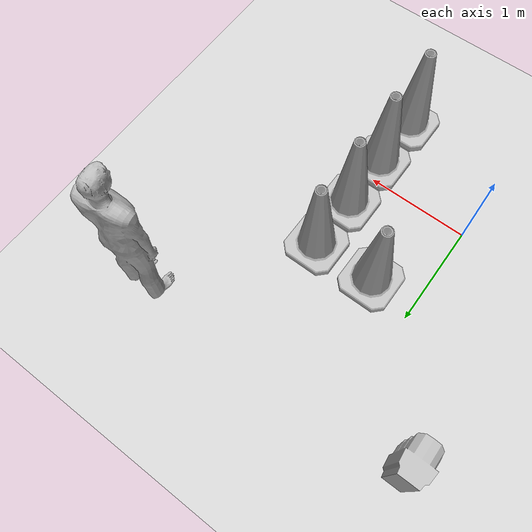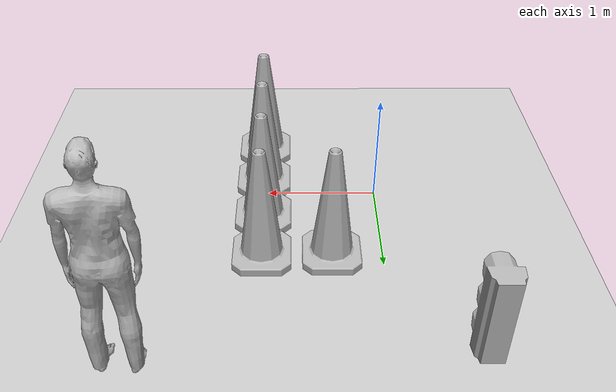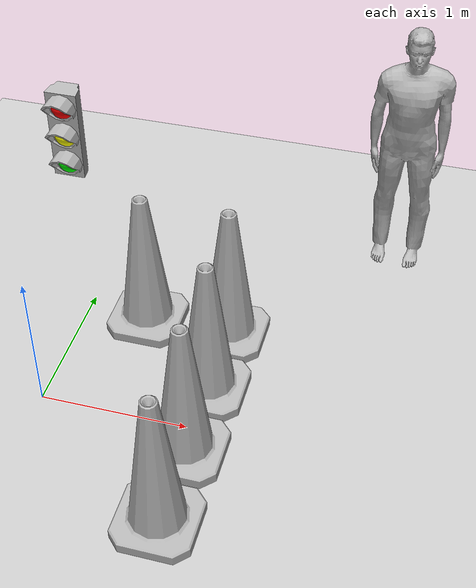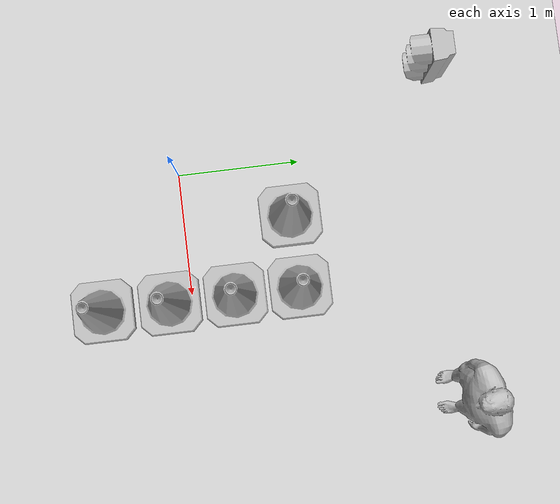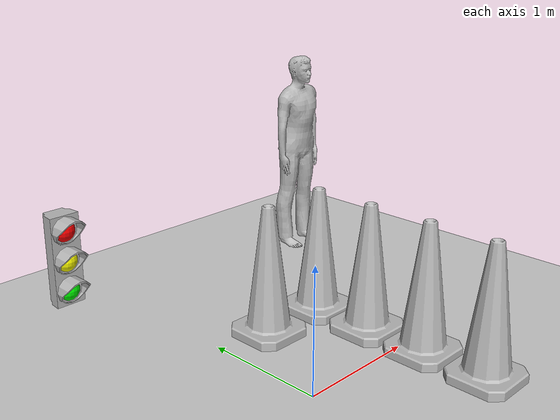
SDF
<sdf version="1.6">
 <world name="default">
  <model name="ground_plane">
   <static>1</static>
   <link name="link">
    <collision name="collision">
     <geometry><plane><normal>0 0 1</normal><size>100 100</size></plane></geometry>
     <surface><friction><ode><mu>100</mu><mu2>50</mu2></ode></friction></surface>
    </collision>
    <visual name="visual">
     <cast_shadows>0</cast_shadows>
     <geometry><plane><normal>0 0 1</normal><size>100 100</size></plane></geometry>
     <material>
      <script><uri>file://media/materials/scripts/gazebo.material</uri><name>Gazebo/Grey</name></script>
     </material>
    </visual>
   </link>
  </model>
  <light name="sun" type="directional">
   <pose>0 0 10 0 -0 0</pose>
   <diffuse>0.8 0.8 0.8 1</diffuse>
   <specular>0.2 0.2 0.2 1</specular>
   <attenuation>
    <range>1000</range>
    <constant>0.9</constant>
    <linear>0.01</linear>
    <quadratic>0.001</quadratic>
   </attenuation>
   <direction>-0.5 0.1 -0.9</direction>
  </light>
  <physics name="default_physics" default="0" type="ode">
   <real_time_update_rate>1000</real_time_update_rate>
   <max_step_size>0.001</max_step_size>
   <real_time_factor>1</real_time_factor>
   <ode>
    <solver>
     <type>quick</type>
     <iters>150</iters>
     <precon_iters>0</precon_iters>
     <sor>1.4</sor>
     <use_dynamic_moi_rescaling>1</use_dynamic_moi_rescaling>
    </solver>
    <constraints>
     <cfm>1e-05</cfm>
     <erp>0.2</erp>
     <contact_max_correcting_vel>2000</contact_max_correcting_vel>
     <contact_surface_layer>0.01</contact_surface_layer>
    </constraints>
   </ode>
  </physics>
  <scene><ambient>0.4 0.4 0.4 1</ambient><background>0.7 0.7 0.7 1</background><shadows>1</shadows></scene>
  <gravity>0 0 -9.8</gravity>
  <magnetic_field>6e-06 2.3e-05 -4.2e-05</magnetic_field>
  <atmosphere type="adiabatic"/>
  <audio><device>default</device></audio>
  <spherical_coordinates>
   <surface_model>EARTH_WGS84</surface_model>
   <latitude_deg>0</latitude_deg>
   <longitude_deg>0</longitude_deg>
   <elevation>0</elevation>
   <heading_deg>0</heading_deg>
  </spherical_coordinates>
  <model name="Construction Cone">
   <link name="link">
    <collision name="collision">
     <geometry>
      <mesh><scale>10 10 10</scale><uri>model://construction_cone/meshes/construction_cone.dae</uri></mesh>
     </geometry>
    </collision>
    <visual name="visual">
     <geometry>
      <mesh><scale>10 10 10</scale><uri>model://construction_cone/meshes/construction_cone.dae</uri></mesh>
     </geometry>
    </visual>
    <inertial>
     <inertia><ixx>1</ixx><ixy>0</ixy><ixz>0</ixz><iyy>1</iyy><iyz>0</iyz><izz>1</izz></inertia>
     <mass>1</mass>
    </inertial>
   </link>
   <pose>1.04268 0.892071 -0 0 -0 0</pose>
  </model>
  <model name="Construction Cone_0">
   <link name="link">
    <collision name="collision">
     <geometry>
      <mesh><scale>10 10 10</scale><uri>model://construction_cone/meshes/construction_cone.dae</uri></mesh>
     </geometry>
    </collision>
    <visual name="visual">
     <geometry>
      <mesh><scale>10 10 10</scale><uri>model://construction_cone/meshes/construction_cone.dae</uri></mesh>
     </geometry>
    </visual>
    <inertial>
     <inertia><ixx>1</ixx><ixy>0</ixy><ixz>0</ixz><iyy>1</iyy><iyz>0</iyz><izz>1</izz></inertia>
     <mass>1</mass>
    </inertial>
   </link>
   <pose>1.04489 0.355721 -0 0 -0 0</pose>
  </model>
  <model name="Construction Cone_1">
   <link name="link">
    <collision name="collision">
     <geometry>
      <mesh><scale>10 10 10</scale><uri>model://construction_cone/meshes/construction_cone.dae</uri></mesh>
     </geometry>
    </collision>
    <visual name="visual">
     <geometry>
      <mesh><scale>10 10 10</scale><uri>model://construction_cone/meshes/construction_cone.dae</uri></mesh>
     </geometry>
    </visual>
    <inertial>
     <inertia><ixx>1</ixx><ixy>0</ixy><ixz>0</ixz><iyy>1</iyy><iyz>0</iyz><izz>1</izz></inertia>
     <mass>1</mass>
    </inertial>
   </link>
   <pose>1.05154 -0.18728 -1e-06 -1e-06 -2e-06 0</pose>
  </model>
  <model name="Construction Cone_2">
   <link name="link">
    <collision name="collision">
     <geometry>
      <mesh><scale>10 10 10</scale><uri>model://construction_cone/meshes/construction_cone.dae</uri></mesh>
     </geometry>
    </collision>
    <visual name="visual">
     <geometry>
      <mesh><scale>10 10 10</scale><uri>model://construction_cone/meshes/construction_cone.dae</uri></mesh>
     </geometry>
    </visual>
    <inertial>
     <inertia><ixx>1</ixx><ixy>0</ixy><ixz>0</ixz><iyy>1</iyy><iyz>0</iyz><izz>1</izz></inertia>
     <mass>1</mass>
    </inertial>
   </link>
   <pose>1.05376 -0.739145 -0 0 -0 0</pose>
  </model>
  <model name="Construction Cone_3">
   <link name="link">
    <collision name="collision">
     <geometry>
      <mesh><scale>10 10 10</scale><uri>model://construction_cone/meshes/construction_cone.dae</uri></mesh>
     </geometry>
    </collision>
    <visual name="visual">
     <geometry>
      <mesh><scale>10 10 10</scale><uri>model://construction_cone/meshes/construction_cone.dae</uri></mesh>
     </geometry>
    </visual>
    <inertial>
     <inertia><ixx>1</ixx><ixy>0</ixy><ixz>0</ixz><iyy>1</iyy><iyz>0</iyz><izz>1</izz></inertia>
     <mass>1</mass>
    </inertial>
   </link>
   <pose>0.444829 0.881957 -0 0 -0 0</pose>
  </model>
  <model name="stop_light">
   <static>1</static>
   <pose>-0.613095 2.20373 1 0 -0 0</pose>
   <link name="link">
    <collision name="collision">
     <geometry>
      <mesh><uri>model://stop_light/meshes/stop_light.obj</uri><scale>0.01 0.01 0.01</scale></mesh>
     </geometry>
    </collision>
    <visual name="frame">
     <geometry>
      <mesh><uri>model://stop_light/meshes/stop_light.obj</uri><scale>0.01 0.01 0.01</scale></mesh>
     </geometry>
    </visual>
    <visual name="red">
     <pose>-0.001123 -0.082251 -0.147514 0 -0 0</pose>
     <geometry><sphere><radius>0.1012</radius></sphere></geometry>
     <material>
      <script>
       <uri>model://stop_light/materials/scripts/</uri>
       <uri>model://stop_light/materials/textures/</uri>
       <name>StopLight/Light</name>
      </script>
      <ambient>1 0 0 1</ambient>
      <specular>1 0 0 1</specular>
     </material>
    </visual>
    <visual name="yellow">
     <pose>-0.001123 -0.082251 -0.402 0 -0 0</pose>
     <geometry><sphere><radius>0.1012</radius></sphere></geometry>
     <material>
      <script>
       <uri>model://stop_light/materials/scripts/</uri>
       <uri>model://stop_light/materials/textures/</uri>
       <name>StopLight/Light</name>
      </script>
      <ambient>1 1 0 1</ambient>
      <specular>1 1 0 1</specular>
     </material>
    </visual>
    <visual name="green">
     <pose>-0.001123 -0.082251 -0.655 0 -0 0</pose>
     <geometry><sphere><radius>0.1012</radius></sphere></geometry>
     <material>
      <script>
       <uri>model://stop_light/materials/scripts/</uri>
       <uri>model://stop_light/materials/textures/</uri>
       <name>StopLight/Light</name>
      </script>
      <ambient>0 1 0 1</ambient>
      <specular>0 1 0 1</specular>
     </material>
    </visual>
   </link>
  </model>
  <model name="person_standing">
   <link name="link">
    <inertial>
     <pose>0 -0.1 0.95 0 -0 0</pose>
     <mass>80</mass>
     <inertia><ixx>24.88</ixx><ixy>0</ixy><ixz>0</ixz><iyy>25.73</iyy><iyz>0</iyz><izz>2.48</izz></inertia>
    </inertial>
    <collision name="bottom">
     <pose>0 -0.1 0.01 0 -0 0</pose>
     <geometry><box><size>0.5 0.35 0.02</size></box></geometry>
    </collision>
    <collision name="person">
     <pose>0 0 0.02 0.04 -0 0</pose>
     <geometry><mesh><uri>model://person_standing/meshes/standing.dae</uri></mesh></geometry>
    </collision>
    <visual name="visual">
     <pose>0 0 0.02 0.04 -0 0</pose>
     <geometry><mesh><uri>model://person_standing/meshes/standing.dae</uri></mesh></geometry>
    </visual>
   </link>
   <pose>2.03315 2.14322 0 -0 1e-06 -0.0001</pose>
  </model>
 </world>
</sdf>
